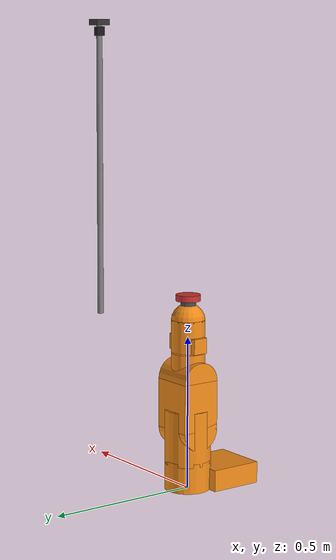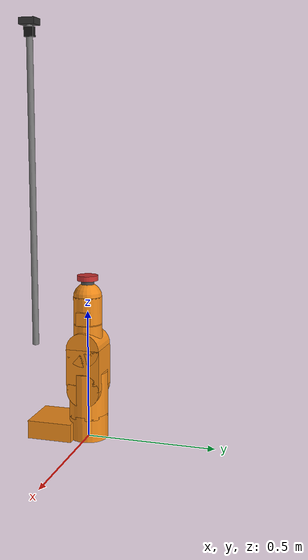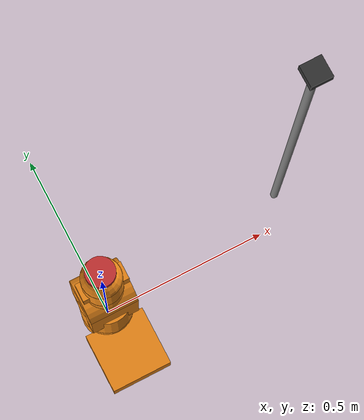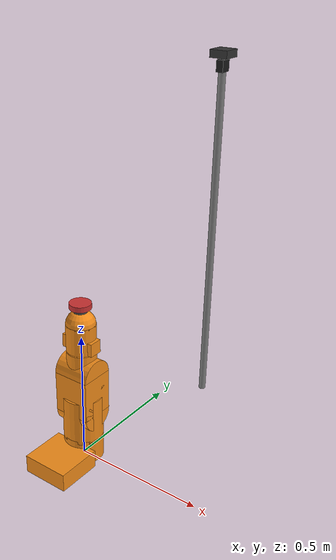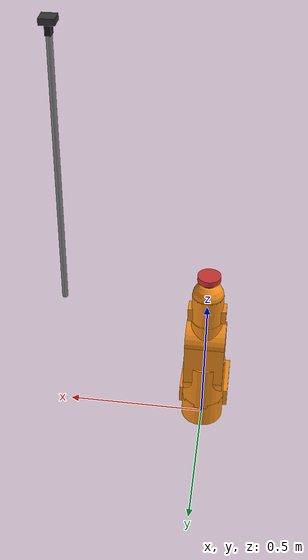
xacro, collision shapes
<?xml version="1.0"?>
<robot xmlns:xacro="http://www.ros.org/wiki/xacro" name="thor_arm">
    <xacro:arg name="initial_positions_file" default="initial_positions.yaml" />

    <!-- Import thor_arm urdf file -->
    <xacro:include filename="$(find thor_urdf)/urdf/thor.urdf.xacro" />

    <!-- Import control_xacro -->
    <xacro:include filename="thor_arm.ros2_control.xacro" />

    <xacro:thor_arm_ros2_control name="FakeSystem" initial_positions_file="$(arg initial_positions_file)"/>

</robot>

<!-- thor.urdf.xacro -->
<robot xmlns:xacro="http://www.ros.org/wiki/xacro" name="thor_arm">

    <!-- Load Simulated or Real Hardware Interfaces -->
    <xacro:arg name="is_sim" default="true"/>

    <!-- Include Gazebo Parameters -->
    <xacro:include filename="$(find thor_urdf)/urdf/thor_gazebo.xacro" />

    <!-- Include ros2_control Plugins -->
    <xacro:include filename="$(find thor_urdf)/urdf/thor_arm.ros2_control.xacro" />

    <!-- Useful XACRO Variables (Properties) -->
    <xacro:property name="PI" value="3.14159265359" />
    <xacro:property name="effort" value="4.0" />
    <xacro:property name="velocity" value="1.0" />

    <!-- Useful Macros -->
    <xacro:macro name="default_inertial" params="mass">
        <inertial>
            <origin xyz="0 0 0" rpy="0 0 0"/>
            <mass value="${mass}" />
            <inertia ixx="1.0" ixy="0.0" ixz="0.0"
                     iyy="1.0" iyz="0.0"
                     izz="1.0" />
        </inertial>
    </xacro:macro>

    <!-- Links -->
    <link name="world"/>

    <link name="base_link">
        <xacro:default_inertial mass="1.0"/>
        <visual>
            <origin xyz="0 0 0" rpy="0 0 -${PI / 2}"/>
            <geometry>
              <mesh filename="package://thor_urdf/meshes/Base.dae" scale="0.001 0.001 0.001" />
            </geometry>
        </visual>
        <collision>
            <origin xyz="0 0 0.049" rpy="0 0 -${PI / 2}"/>
            <geometry>
                <cylinder radius="0.075" length="0.098"/>
            </geometry>
        </collision>
        <collision>
            <origin xyz="0 -0.1312686 0.035250" rpy="0 0 -${PI / 2}"/>
            <geometry>
                <box size="0.176 0.180 0.0705"/>
            </geometry>
        </collision>
    </link>

    <link name="link_1">
        <xacro:default_inertial mass="1.0"/>
        <visual>
            <origin xyz="0 0 0" rpy="0 0 -${PI / 2}"/>
            <geometry>
              <mesh filename="package://thor_urdf/meshes/Art1.dae" scale="0.001 0.001 0.001" />
            </geometry>
        </visual>
        <collision>
            <origin xyz="0 0 0.0765" rpy="0 0 -${PI / 2}"/>
            <geometry>
                <cylinder radius="0.075" length="0.179"/>
            </geometry>
        </collision>
    </link>

    <link name="link_2">
        <xacro:default_inertial mass="1.0"/>
        <visual>
            <origin xyz="0 0 0" rpy="0 0 -${PI / 2}"/>
            <geometry>
              <mesh filename="package://thor_urdf/meshes/Art2.dae" scale="0.001 0.001 0.001" />
            </geometry>
        </visual>
        <collision>
            <origin xyz="0 0 0" rpy="${PI / 2} 0 -${PI / 2}"/>
            <geometry>
                <cylinder radius="0.065" length="0.140"/>
            </geometry>
        </collision>
        <collision>
            <origin xyz="0 0 0.080" rpy="${PI / 2} 0 -${PI / 2}"/>
            <geometry>
                <box size="0.130 0.160 0.140"/>
            </geometry>
        </collision>
        <collision>
            <origin xyz="0 0 0.160" rpy="${PI / 2} 0 -${PI / 2}"/>
            <geometry>
                <cylinder radius="0.065" length="0.140"/>
            </geometry>
        </collision>
    </link>

    <link name="link_3">
        <xacro:default_inertial mass="1.0"/>
        <visual>
            <origin xyz="0 0 0" rpy="0 0 -${PI / 2}"/>
            <geometry>
              <mesh filename="package://thor_urdf/meshes/Art3.dae" scale="0.001 0.001 0.001" />
            </geometry>
        </visual>
        <collision>
            <origin xyz="0 0 0.01225" rpy="0 0 -${PI / 2}"/>
            <geometry>
                <cylinder radius="0.055" length="0.1525"/>
            </geometry>
        </collision>
    </link>

    <link name="link_4">
        <xacro:default_inertial mass="1.0"/>
        <visual>
            <origin xyz="0 0 0" rpy="0 0 -${PI / 2}"/>
            <geometry>
              <mesh filename="package://thor_urdf/meshes/Art4.dae" scale="0.001 0.001 0.001" />
            </geometry>
        </visual>
        <collision>
            <origin xyz="0 0 0.1045" rpy="0 0 -${PI / 2}"/>
            <geometry>
                <sphere radius="0.055"/>
            </geometry>
        </collision>
        <collision>
            <origin xyz="0 0 0.05525" rpy="0 0 -${PI / 2}"/>
            <geometry>
                <cylinder radius="0.055" length="0.1045"/>
            </geometry>
        </collision>
        <collision>
            <origin xyz="0 0 0.0295" rpy="0 0 -${PI / 2}"/>
            <geometry>
                <box size="0.050 0.132 0.050"/>
            </geometry>
        </collision>
    </link>

    <link name="link_5">
        <xacro:default_inertial mass="1.0"/>
        <visual>
            <origin xyz="0 0 0" rpy="0 0 -${PI / 2}"/>
            <geometry>
                <mesh filename="package://thor_urdf/meshes/Art5.dae" scale="0.001 0.001 0.001" />
            </geometry>
        </visual>
        <collision>
            <origin xyz="0 0 0" rpy="${PI / 2} 0 -${PI / 2}"/>
            <geometry>
                <cylinder radius="0.047" length="0.03"/>
            </geometry>
        </collision>
    </link>

    <link name="link_6">
        <xacro:default_inertial mass="1.0"/>
        <visual>
            <origin xyz="0 0 0" rpy="0 0 -${PI / 2}"/>
        <geometry>
            <mesh filename="package://thor_urdf/meshes/Art6.dae" scale="0.001 0.001 0.001" />
        </geometry>
        </visual>
        <collision>
            <origin xyz="0 0 0.025" rpy="0 0 -${PI / 2}"/>
            <geometry>
                <cylinder radius="0.015" length="0.05"/>
            </geometry>
        </collision>
    </link>

    <!-- Electromagnet End Effector -->
    <link name="electromagnet_mount">
        <xacro:default_inertial mass="0.2"/>
        <visual>
            <origin xyz="0 0 0" rpy="0 0 0"/>
            <geometry>
                <cylinder radius="0.025" length="0.015"/>
            </geometry>
            <material name="mount_material">
                <color rgba="0.3 0.3 0.3 1.0"/>
            </material>
        </visual>
        <collision>
            <origin xyz="0 0 0" rpy="0 0 0"/>
            <geometry>
                <cylinder radius="0.025" length="0.015"/>
            </geometry>
        </collision>
    </link>

    <link name="electromagnet_plate">
        <xacro:default_inertial mass="0.4"/>
        <visual>
            <origin xyz="0 0 0" rpy="0 0 0"/>
            <geometry>
                <cylinder radius="0.04" length="0.02"/>
            </geometry>
            <material name="magnet_material">
                <color rgba="0.8 0.2 0.2 1.0"/>
            </material>
        </visual>
        <collision>
            <origin xyz="0 0 0" rpy="0 0 0"/>
            <geometry>
                <cylinder radius="0.04" length="0.02"/>
            </geometry>
        </collision>
    </link>

    <!-- Overhead Camera System (floating above workspace) -->
    <link name="camera_support_pole">
        <xacro:default_inertial mass="2.0"/>
        <visual>
            <origin xyz="0 0 0" rpy="0 0 0"/>
            <geometry>
                <cylinder radius="0.01" length="1.0"/>
            </geometry>
            <material name="pole_material">
                <color rgba="0.5 0.5 0.5 1.0"/>
            </material>
        </visual>
        <collision>
            <origin xyz="0 0 0" rpy="0 0 0"/>
            <geometry>
                <cylinder radius="0.01" length="1.0"/>
            </geometry>
        </collision>
    </link>

    <link name="camera_mount">
        <xacro:default_inertial mass="0.1"/>
        <visual>
            <origin xyz="0 0 0" rpy="0 0 0"/>
            <geometry>
                <box size="0.05 0.05 0.02"/>
            </geometry>
            <material name="camera_mount_material">
                <color rgba="0.2 0.2 0.2 1.0"/>
            </material>
        </visual>
        <collision>
            <origin xyz="0 0 0" rpy="0 0 0"/>
            <geometry>
                <box size="0.05 0.05 0.02"/>
            </geometry>
        </collision>
    </link>

    <link name="camera_link">
        <xacro:default_inertial mass="0.05"/>
        <visual>
            <origin xyz="0 0 0" rpy="0 0 0"/>
            <geometry>
                <box size="0.03 0.03 0.02"/>
            </geometry>
            <material name="camera_material">
                <color rgba="0.1 0.1 0.1 1.0"/>
            </material>
        </visual>
        <collision>
            <origin xyz="0 0 0" rpy="0 0 0"/>
            <geometry>
                <box size="0.03 0.03 0.02"/>
            </geometry>
        </collision>
    </link>

    <!-- Camera optical frame (for ROS conventions) -->
    <link name="camera_optical_frame">
        <xacro:default_inertial mass="0.001"/>
    </link>

    <!-- Joints -->
    <joint name="virtual_joint" type="fixed">
        <parent link="world"/>
        <child link="base_link"/>
        <origin xyz="0 0 0" rpy="0 0 0"/>
    </joint>

    <joint name ="joint_1" type="revolute">
        <parent link="base_link"/>
        <child link="link_1"/>
        <origin xyz="0 0 0.099" rpy="0 0 0"/>
        <axis xyz="0 0 1"/>
        <limit lower="-2.967" upper="2.967"
               effort="${effort}" velocity="${velocity}"/>
    </joint>

    <joint name="joint_2" type="revolute">
        <parent link="link_1"/>
        <child link="link_2"/>
        <origin xyz="0 0 0.103" rpy="0 0 0"/>
        <axis xyz="1 0 0"/>
        <limit lower="-${PI / 2}" upper="${PI / 2}"
               effort="${effort}" velocity="${velocity}"/>
    </joint>

    <joint name="joint_3" type="revolute">
        <parent link="link_2"/>
        <child link="link_3"/>
        <origin xyz="0 0 0.16" rpy="0 0 0"/>
        <axis xyz="1 0 0"/>
        <limit lower="-${PI / 2}" upper="${PI / 2}"
               effort="${effort}" velocity="${velocity}"/>
    </joint>

    <joint name="joint_4" type="revolute">
        <parent link="link_3"/>
        <child link="link_4"/>
        <origin xyz="0 0 0.0895" rpy="0 0 0"/>
        <axis xyz="0 0 1"/>
        <limit lower="-2.967" upper="2.967"
               effort="${effort}" velocity="${velocity}"/>
    </joint>

    <joint name="joint_5" type="revolute">
        <parent link="link_4"/>
        <child link="link_5"/>
        <origin xyz="0 0 0.1045" rpy="0 0 0"/>
        <axis xyz="1 0 0"/>
        <limit lower="-${PI / 2}" upper="${PI / 2}"
               effort="${effort}" velocity="${velocity}"/>
      </joint>

    <joint name="joint_6" type="revolute">
        <parent link="link_5"/>
        <child link="link_6"/>
        <origin xyz="0 0 0.0135" rpy="0 0 0"/>
        <axis xyz="0 0 1"/>
        <limit lower="-2.967" upper="2.967"
               effort="${effort}" velocity="${velocity}"/>
    </joint>

    <!-- Electromagnet Mounting Joints -->
    <joint name="link6_to_electromagnet_mount" type="fixed">
        <parent link="link_6"/>
        <child link="electromagnet_mount"/>
        <origin xyz="0 0 0.043" rpy="0 0 0"/>
    </joint>

    <joint name="electromagnet_mount_to_plate" type="fixed">
        <parent link="electromagnet_mount"/>
        <child link="electromagnet_plate"/>
        <origin xyz="0 0 0.0175" rpy="0 0 0"/>
    </joint>

    <!-- Overhead Camera System Joints -->
    <!-- Support pole mounted to world (positioned above workspace) -->
    <joint name="world_to_camera_pole" type="fixed">
        <parent link="world"/>
        <child link="camera_support_pole"/>
        <!-- Position pole 0.5m to the side and 1m high -->
        <origin xyz="0.5 0 1.0" rpy="0 0 0"/>
    </joint>

    <!-- Camera mount at top of pole -->
    <joint name="pole_to_camera_mount" type="fixed">
        <parent link="camera_support_pole"/>
        <child link="camera_mount"/>
        <!-- Position at top of pole -->
        <origin xyz="0 0 0.5" rpy="0 0 0"/>
    </joint>

    <!-- Camera attached to mount, pointing down at workspace -->
    <joint name="mount_to_camera" type="fixed">
        <parent link="camera_mount"/>
        <child link="camera_link"/>
        <!-- Offset slightly and point down -->
        <origin xyz="0 0 -0.03" rpy="0 ${PI/2} 0"/>
    </joint>

    <!-- Camera optical frame for ROS conventions -->
    <joint name="camera_to_optical_frame" type="fixed">
        <parent link="camera_link"/>
        <child link="camera_optical_frame"/>
        <!-- Standard ROS camera optical frame transformation -->
        <origin xyz="0 0 0" rpy="-${PI/2} 0 -${PI/2}"/>
    </joint>

</robot>
